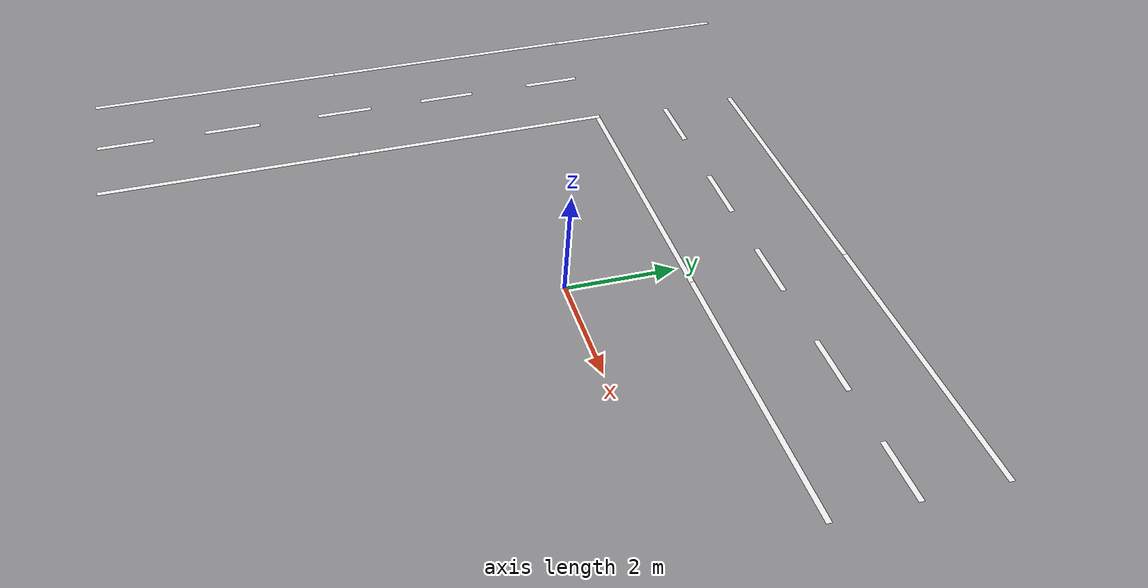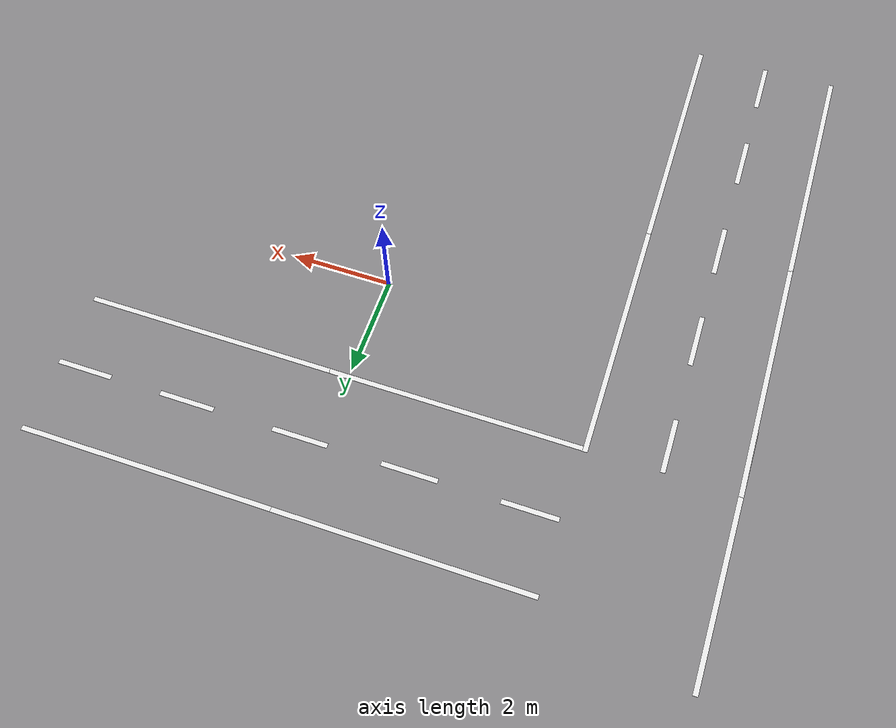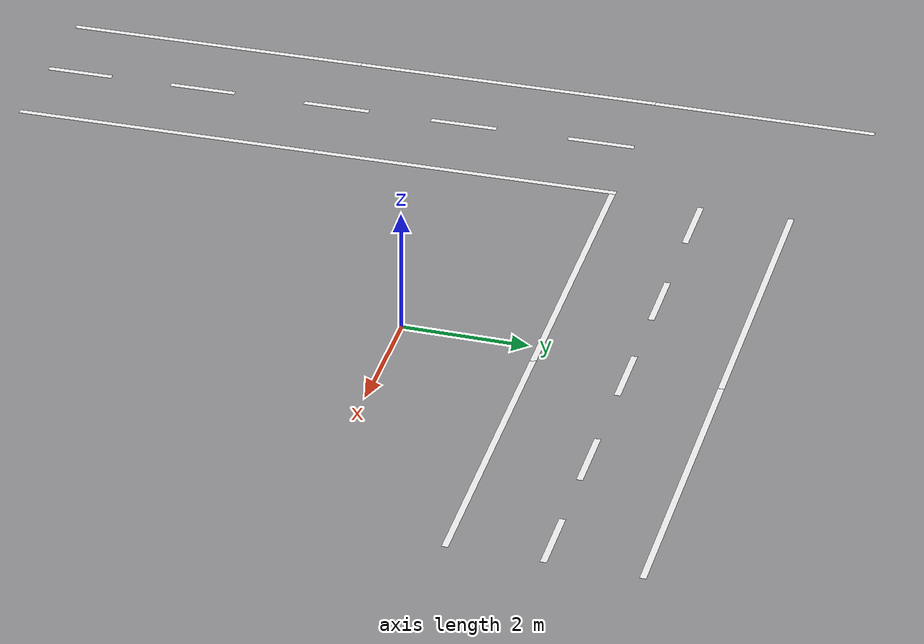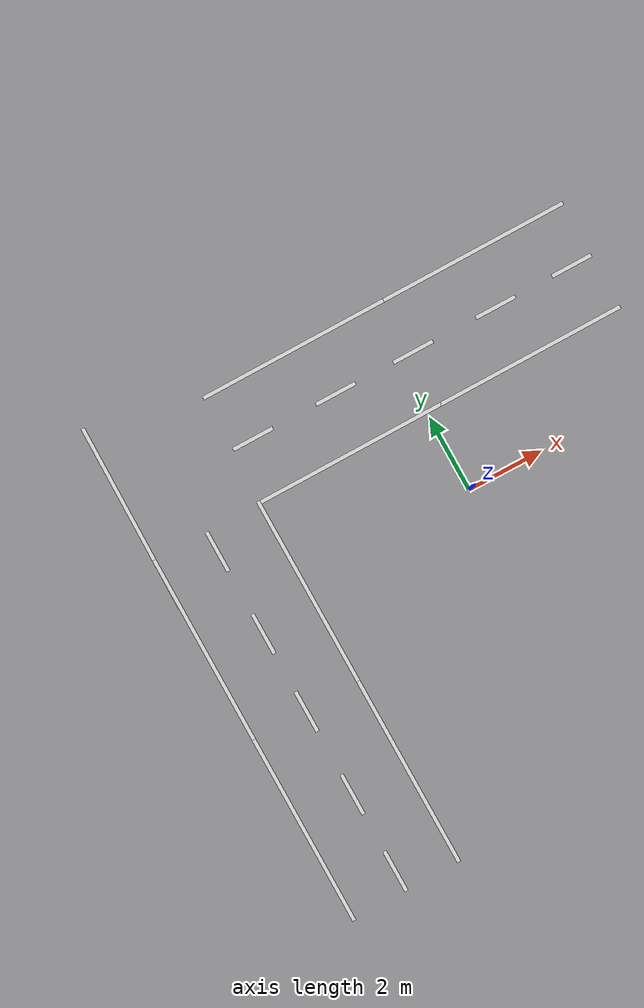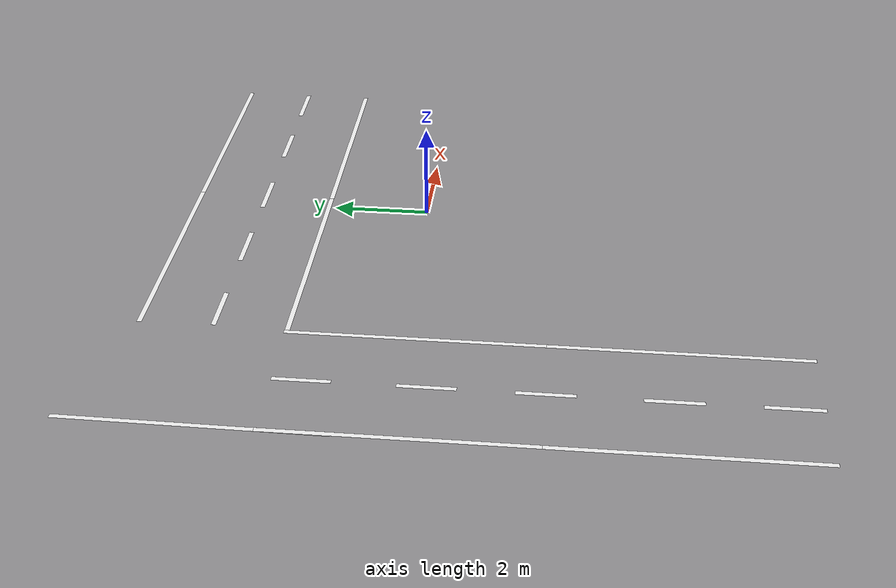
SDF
<sdf version="1.6">
 <model name="roadSystem">
  <model name="road">
   <model name="road">
    <link name="link">
     <pose>-0.42356 2.05106 0 0 -0 0</pose>
     <inertial>
      <mass>0.362604</mass>
      <inertia>
       <ixx>0.00016034</ixx>
       <ixy>0</ixy>
       <ixz>0</ixz>
       <iyy>0.757889</iyy>
       <iyz>0</iyz>
       <izz>0.758045</izz>
      </inertia>
     </inertial>
     <visual name="visual">
      <geometry><box><size>5 0.1 1e-06</size></box></geometry>
      <material>
       <script><name>Gazebo/White</name><uri>file://media/materials/scripts/gazebo.material</uri></script>
       <shader type="pixel"><normal_map>__default__</normal_map></shader>
       <ambient>1 1 1 1</ambient>
       <diffuse>0.7 0.7 0.7 0</diffuse>
       <specular>0.01 0.01 0.01 0</specular>
       <emissive>0 0 0 1</emissive>
       <lighting>0</lighting>
      </material>
     </visual>
     <collision name="collision">
      <geometry><box><size>5.00814 0.072377 0.008224</size></box></geometry>
      <surface>
       <friction>
        <ode><mu>1</mu><mu2>1</mu2><fdir1>0 0 0</fdir1><slip1>0</slip1><slip2>0</slip2></ode>
        <torsional>
         <coefficient>1</coefficient>
         <patch_radius>0</patch_radius>
         <surface_radius>0</surface_radius>
         <use_patch_radius>1</use_patch_radius>
         <ode><slip>0</slip></ode>
        </torsional>
       </friction>
       <bounce><restitution_coefficient>0</restitution_coefficient><threshold>1e+06</threshold></bounce>
       <contact>
        <collide_without_contact>0</collide_without_contact>
        <collide_without_contact_bitmask>1</collide_without_contact_bitmask>
        <collide_bitmask>1</collide_bitmask>
        <ode>
         <soft_cfm>0</soft_cfm>
         <soft_erp>0.2</soft_erp>
         <kp>1e+13</kp>
         <kd>1</kd>
         <max_vel>0.01</max_vel>
         <min_depth>0</min_depth>
        </ode>
        <bullet>
         <split_impulse>1</split_impulse>
         <split_impulse_penetration_threshold>-0.01</split_impulse_penetration_threshold>
         <soft_cfm>0</soft_cfm>
         <soft_erp>0.2</soft_erp>
         <kp>1e+13</kp>
         <kd>1</kd>
        </bullet>
       </contact>
      </surface>
     </collision>
    </link>
    <static>0</static>
    <pose>4.98271 0.008236 0 0 -0 0</pose>
   </model>
   <model name="road_clone">
    <link name="link">
     <pose>-0.42356 2.05106 0 0 -0 0</pose>
     <inertial>
      <mass>0.362604</mass>
      <inertia>
       <ixx>0.00016034</ixx>
       <ixy>0</ixy>
       <ixz>0</ixz>
       <iyy>0.757889</iyy>
       <iyz>0</iyz>
       <izz>0.758045</izz>
      </inertia>
     </inertial>
     <visual name="visual">
      <geometry><box><size>5 0.1 1e-06</size></box></geometry>
      <material>
       <script><name>Gazebo/White</name><uri>file://media/materials/scripts/gazebo.material</uri></script>
       <shader type="pixel"><normal_map>__default__</normal_map></shader>
       <ambient>1 1 1 1</ambient>
       <diffuse>0.7 0.7 0.7 0</diffuse>
       <specular>0.01 0.01 0.01 0</specular>
       <emissive>0 0 0 1</emissive>
       <lighting>0</lighting>
      </material>
     </visual>
     <collision name="collision">
      <geometry><box><size>5.00814 0.072377 0.008224</size></box></geometry>
      <surface>
       <friction>
        <ode><mu>1</mu><mu2>1</mu2><fdir1>0 0 0</fdir1><slip1>0</slip1><slip2>0</slip2></ode>
        <torsional>
         <coefficient>1</coefficient>
         <patch_radius>0</patch_radius>
         <surface_radius>0</surface_radius>
         <use_patch_radius>1</use_patch_radius>
         <ode><slip>0</slip></ode>
        </torsional>
       </friction>
       <bounce><restitution_coefficient>0</restitution_coefficient><threshold>1e+06</threshold></bounce>
       <contact>
        <collide_without_contact>0</collide_without_contact>
        <collide_without_contact_bitmask>1</collide_without_contact_bitmask>
        <collide_bitmask>1</collide_bitmask>
        <ode>
         <soft_cfm>0</soft_cfm>
         <soft_erp>0.2</soft_erp>
         <kp>1e+13</kp>
         <kd>1</kd>
         <max_vel>0.01</max_vel>
         <min_depth>0</min_depth>
        </ode>
        <bullet>
         <split_impulse>1</split_impulse>
         <split_impulse_penetration_threshold>-0.01</split_impulse_penetration_threshold>
         <soft_cfm>0</soft_cfm>
         <soft_erp>0.2</soft_erp>
         <kp>1e+13</kp>
         <kd>1</kd>
        </bullet>
       </contact>
      </surface>
     </collision>
    </link>
    <static>0</static>
    <pose>-0.01634 0.008315 0 0 -0 0</pose>
   </model>
   <model name="roadmark">
    <link name="link">
     <pose>-0.38042 1.1429 0 0 -0 0</pose>
     <inertial>
      <mass>0.362604</mass>
      <inertia>
       <ixx>0.00016034</ixx>
       <ixy>0</ixy>
       <ixz>0</ixz>
       <iyy>0.757889</iyy>
       <iyz>0</iyz>
       <izz>0.758045</izz>
      </inertia>
     </inertial>
     <visual name="visual">
      <geometry><box><size>5 0.1 1e-06</size></box></geometry>
      <material>
       <script><name>Gazebo/White</name><uri>file://media/materials/scripts/gazebo.material</uri></script>
       <shader type="pixel"><normal_map>__default__</normal_map></shader>
       <ambient>1 1 1 1</ambient>
       <diffuse>0.7 0.7 0.7 0</diffuse>
       <specular>0.01 0.01 0.01 0</specular>
       <emissive>0 0 0 1</emissive>
       <lighting>0</lighting>
      </material>
     </visual>
     <collision name="collision">
      <geometry><box><size>5.00814 0.072377 0.008224</size></box></geometry>
      <surface>
       <friction>
        <ode><mu>1</mu><mu2>1</mu2><fdir1>0 0 0</fdir1><slip1>0</slip1><slip2>0</slip2></ode>
        <torsional>
         <coefficient>1</coefficient>
         <patch_radius>0</patch_radius>
         <surface_radius>0</surface_radius>
         <use_patch_radius>1</use_patch_radius>
         <ode><slip>0</slip></ode>
        </torsional>
       </friction>
       <bounce><restitution_coefficient>0</restitution_coefficient><threshold>1e+06</threshold></bounce>
       <contact>
        <collide_without_contact>0</collide_without_contact>
        <collide_without_contact_bitmask>1</collide_without_contact_bitmask>
        <collide_bitmask>1</collide_bitmask>
        <ode>
         <soft_cfm>0</soft_cfm>
         <soft_erp>0.2</soft_erp>
         <kp>1e+13</kp>
         <kd>1</kd>
         <max_vel>0.01</max_vel>
         <min_depth>0</min_depth>
        </ode>
        <bullet>
         <split_impulse>1</split_impulse>
         <split_impulse_penetration_threshold>-0.01</split_impulse_penetration_threshold>
         <soft_cfm>0</soft_cfm>
         <soft_erp>0.2</soft_erp>
         <kp>1e+13</kp>
         <kd>1</kd>
        </bullet>
       </contact>
      </surface>
     </collision>
    </link>
    <static>0</static>
    <pose>-0.037207 -1.98082 0 0 -0 0</pose>
   </model>
   <model name="roadmark_clone_0">
    <link name="link">
     <pose>-0.38042 1.1429 0 0 -0 0</pose>
     <inertial>
      <mass>0.362604</mass>
      <inertia>
       <ixx>0.00016034</ixx>
       <ixy>0</ixy>
       <ixz>0</ixz>
       <iyy>0.757889</iyy>
       <iyz>0</iyz>
       <izz>0.758045</izz>
      </inertia>
     </inertial>
     <visual name="visual">
      <geometry><box><size>5 0.1 1e-06</size></box></geometry>
      <material>
       <script><name>Gazebo/White</name><uri>file://media/materials/scripts/gazebo.material</uri></script>
       <shader type="pixel"><normal_map>__default__</normal_map></shader>
       <ambient>1 1 1 1</ambient>
       <diffuse>0.7 0.7 0.7 0</diffuse>
       <specular>0.01 0.01 0.01 0</specular>
       <emissive>0 0 0 1</emissive>
       <lighting>0</lighting>
      </material>
     </visual>
     <collision name="collision">
      <geometry><box><size>5.00814 0.072377 0.008224</size></box></geometry>
      <surface>
       <friction>
        <ode><mu>1</mu><mu2>1</mu2><fdir1>0 0 0</fdir1><slip1>0</slip1><slip2>0</slip2></ode>
        <torsional>
         <coefficient>1</coefficient>
         <patch_radius>0</patch_radius>
         <surface_radius>0</surface_radius>
         <use_patch_radius>1</use_patch_radius>
         <ode><slip>0</slip></ode>
        </torsional>
       </friction>
       <bounce><restitution_coefficient>0</restitution_coefficient><threshold>1e+06</threshold></bounce>
       <contact>
        <collide_without_contact>0</collide_without_contact>
        <collide_without_contact_bitmask>1</collide_without_contact_bitmask>
        <collide_bitmask>1</collide_bitmask>
        <ode>
         <soft_cfm>0</soft_cfm>
         <soft_erp>0.2</soft_erp>
         <kp>1e+13</kp>
         <kd>1</kd>
         <max_vel>0.01</max_vel>
         <min_depth>0</min_depth>
        </ode>
        <bullet>
         <split_impulse>1</split_impulse>
         <split_impulse_penetration_threshold>-0.01</split_impulse_penetration_threshold>
         <soft_cfm>0</soft_cfm>
         <soft_erp>0.2</soft_erp>
         <kp>1e+13</kp>
         <kd>1</kd>
        </bullet>
       </contact>
      </surface>
     </collision>
    </link>
    <static>0</static>
    <pose>4.94295 -1.98208 0 0 -0 0</pose>
   </model>
   <model name="roadmark_mid">
    <link name="link">
     <pose>-2.29682 2.593 0.0001 0 -0 0</pose>
     <inertial>
      <mass>0.0807885</mass>
      <inertia>
       <ixx>3.572e-05</ixx>
       <ixy>0</ixy>
       <ixz>0</ixz>
       <iyy>0.00838261</iyy>
       <iyz>0</iyz>
       <izz>0.00841742</izz>
      </inertia>
     </inertial>
     <visual name="visual">
      <geometry><box><size>1.1 0.1 1e-06</size></box></geometry>
      <material>
       <script><name>Gazebo/White</name><uri>file://media/materials/scripts/gazebo.material</uri></script>
       <shader type="pixel"><normal_map>__default__</normal_map></shader>
       <ambient>1 1 1 1</ambient>
       <diffuse>0.7 0.7 0.7 0</diffuse>
       <specular>0.01 0.01 0.01 0</specular>
       <emissive>0 0 0 1</emissive>
       <lighting>0</lighting>
      </material>
     </visual>
     <collision name="collision">
      <geometry><box><size>1.11582 0.072377 0.008224</size></box></geometry>
      <surface>
       <friction>
        <ode><mu>1</mu><mu2>1</mu2><fdir1>0 0 0</fdir1><slip1>0</slip1><slip2>0</slip2></ode>
        <torsional>
         <coefficient>1</coefficient>
         <patch_radius>0</patch_radius>
         <surface_radius>0</surface_radius>
         <use_patch_radius>1</use_patch_radius>
         <ode><slip>0</slip></ode>
        </torsional>
       </friction>
       <bounce><restitution_coefficient>0</restitution_coefficient><threshold>1e+06</threshold></bounce>
       <contact>
        <collide_without_contact>0</collide_without_contact>
        <collide_without_contact_bitmask>1</collide_without_contact_bitmask>
        <collide_bitmask>1</collide_bitmask>
        <ode>
         <soft_cfm>0</soft_cfm>
         <soft_erp>0.2</soft_erp>
         <kp>1e+13</kp>
         <kd>1</kd>
         <max_vel>0.01</max_vel>
         <min_depth>0</min_depth>
        </ode>
        <bullet>
         <split_impulse>1</split_impulse>
         <split_impulse_penetration_threshold>-0.01</split_impulse_penetration_threshold>
         <soft_cfm>0</soft_cfm>
         <soft_erp>0.2</soft_erp>
         <kp>1e+13</kp>
         <kd>1</kd>
        </bullet>
       </contact>
      </surface>
     </collision>
    </link>
    <static>0</static>
    <pose>8.80135 -1.98422 0 0 -0 0</pose>
   </model>
   <model name="roadmark_mid_clone">
    <link name="link">
     <pose>-2.29682 2.593 0.0001 0 -0 0</pose>
     <inertial>
      <mass>0.0807885</mass>
      <inertia>
       <ixx>3.572e-05</ixx>
       <ixy>0</ixy>
       <ixz>0</ixz>
       <iyy>0.00838261</iyy>
       <iyz>0</iyz>
       <izz>0.00841742</izz>
      </inertia>
     </inertial>
     <visual name="visual">
      <geometry><box><size>1.1 0.1 1e-06</size></box></geometry>
      <material>
       <script><name>Gazebo/White</name><uri>file://media/materials/scripts/gazebo.material</uri></script>
       <shader type="pixel"><normal_map>__default__</normal_map></shader>
       <ambient>1 1 1 1</ambient>
       <diffuse>0.7 0.7 0.7 0</diffuse>
       <specular>0.01 0.01 0.01 0</specular>
       <emissive>0 0 0 1</emissive>
       <lighting>0</lighting>
      </material>
     </visual>
     <collision name="collision">
      <geometry><box><size>1.11582 0.072377 0.008224</size></box></geometry>
      <surface>
       <friction>
        <ode><mu>1</mu><mu2>1</mu2><fdir1>0 0 0</fdir1><slip1>0</slip1><slip2>0</slip2></ode>
        <torsional>
         <coefficient>1</coefficient>
         <patch_radius>0</patch_radius>
         <surface_radius>0</surface_radius>
         <use_patch_radius>1</use_patch_radius>
         <ode><slip>0</slip></ode>
        </torsional>
       </friction>
       <bounce><restitution_coefficient>0</restitution_coefficient><threshold>1e+06</threshold></bounce>
       <contact>
        <collide_without_contact>0</collide_without_contact>
        <collide_without_contact_bitmask>1</collide_without_contact_bitmask>
        <collide_bitmask>1</collide_bitmask>
        <ode>
         <soft_cfm>0</soft_cfm>
         <soft_erp>0.2</soft_erp>
         <kp>1e+13</kp>
         <kd>1</kd>
         <max_vel>0.01</max_vel>
         <min_depth>0</min_depth>
        </ode>
        <bullet>
         <split_impulse>1</split_impulse>
         <split_impulse_penetration_threshold>-0.01</split_impulse_penetration_threshold>
         <soft_cfm>0</soft_cfm>
         <soft_erp>0.2</soft_erp>
         <kp>1e+13</kp>
         <kd>1</kd>
        </bullet>
       </contact>
      </surface>
     </collision>
    </link>
    <static>0</static>
    <pose>-0.048046 -1.98463 0 0 -0 0</pose>
   </model>
   <model name="roadmark_mid_clone_0">
    <link name="link">
     <pose>-2.29682 2.593 0.0001 0 -0 0</pose>
     <inertial>
      <mass>0.0807885</mass>
      <inertia>
       <ixx>3.572e-05</ixx>
       <ixy>0</ixy>
       <ixz>0</ixz>
       <iyy>0.00838261</iyy>
       <iyz>0</iyz>
       <izz>0.00841742</izz>
      </inertia>
     </inertial>
     <visual name="visual">
      <geometry><box><size>1.1 0.1 1e-06</size></box></geometry>
      <material>
       <script><name>Gazebo/White</name><uri>file://media/materials/scripts/gazebo.material</uri></script>
       <shader type="pixel"><normal_map>__default__</normal_map></shader>
       <ambient>1 1 1 1</ambient>
       <diffuse>0.7 0.7 0.7 0</diffuse>
       <specular>0.01 0.01 0.01 0</specular>
       <emissive>0 0 0 1</emissive>
       <lighting>0</lighting>
      </material>
     </visual>
     <collision name="collision">
      <geometry><box><size>1.11582 0.072377 0.008224</size></box></geometry>
      <surface>
       <friction>
        <ode><mu>1</mu><mu2>1</mu2><fdir1>0 0 0</fdir1><slip1>0</slip1><slip2>0</slip2></ode>
        <torsional>
         <coefficient>1</coefficient>
         <patch_radius>0</patch_radius>
         <surface_radius>0</surface_radius>
         <use_patch_radius>1</use_patch_radius>
         <ode><slip>0</slip></ode>
        </torsional>
       </friction>
       <bounce><restitution_coefficient>0</restitution_coefficient><threshold>1e+06</threshold></bounce>
       <contact>
        <collide_without_contact>0</collide_without_contact>
        <collide_without_contact_bitmask>1</collide_without_contact_bitmask>
        <collide_bitmask>1</collide_bitmask>
        <ode>
         <soft_cfm>0</soft_cfm>
         <soft_erp>0.2</soft_erp>
         <kp>1e+13</kp>
         <kd>1</kd>
         <max_vel>0.01</max_vel>
         <min_depth>0</min_depth>
        </ode>
        <bullet>
         <split_impulse>1</split_impulse>
         <split_impulse_penetration_threshold>-0.01</split_impulse_penetration_threshold>
         <soft_cfm>0</soft_cfm>
         <soft_erp>0.2</soft_erp>
         <kp>1e+13</kp>
         <kd>1</kd>
        </bullet>
       </contact>
      </surface>
     </collision>
    </link>
    <static>0</static>
    <pose>4.39245 -1.98631 0 0 -0 0</pose>
   </model>
   <model name="roadmark_mid_clone_1">
    <link name="link">
     <pose>-2.29682 2.593 0.0001 0 -0 0</pose>
     <inertial>
      <mass>0.0807885</mass>
      <inertia>
       <ixx>3.572e-05</ixx>
       <ixy>0</ixy>
       <ixz>0</ixz>
       <iyy>0.00838261</iyy>
       <iyz>0</iyz>
       <izz>0.00841742</izz>
      </inertia>
     </inertial>
     <visual name="visual">
      <geometry><box><size>1.1 0.1 1e-06</size></box></geometry>
      <material>
       <script><name>Gazebo/White</name><uri>file://media/materials/scripts/gazebo.material</uri></script>
       <shader type="pixel"><normal_map>__default__</normal_map></shader>
       <ambient>1 1 1 1</ambient>
       <diffuse>0.7 0.7 0.7 0</diffuse>
       <specular>0.01 0.01 0.01 0</specular>
       <emissive>0 0 0 1</emissive>
       <lighting>0</lighting>
      </material>
     </visual>
     <collision name="collision">
      <geometry><box><size>1.11582 0.072377 0.008224</size></box></geometry>
      <surface>
       <friction>
        <ode><mu>1</mu><mu2>1</mu2><fdir1>0 0 0</fdir1><slip1>0</slip1><slip2>0</slip2></ode>
        <torsional>
         <coefficient>1</coefficient>
         <patch_radius>0</patch_radius>
         <surface_radius>0</surface_radius>
         <use_patch_radius>1</use_patch_radius>
         <ode><slip>0</slip></ode>
        </torsional>
       </friction>
       <bounce><restitution_coefficient>0</restitution_coefficient><threshold>1e+06</threshold></bounce>
       <contact>
        <collide_without_contact>0</collide_without_contact>
        <collide_without_contact_bitmask>1</collide_without_contact_bitmask>
        <collide_bitmask>1</collide_bitmask>
        <ode>
         <soft_cfm>0</soft_cfm>
         <soft_erp>0.2</soft_erp>
         <kp>1e+13</kp>
         <kd>1</kd>
         <max_vel>0.01</max_vel>
         <min_depth>0</min_depth>
        </ode>
        <bullet>
         <split_impulse>1</split_impulse>
         <split_impulse_penetration_threshold>-0.01</split_impulse_penetration_threshold>
         <soft_cfm>0</soft_cfm>
         <soft_erp>0.2</soft_erp>
         <kp>1e+13</kp>
         <kd>1</kd>
        </bullet>
       </contact>
      </surface>
     </collision>
    </link>
    <static>0</static>
    <pose>6.68356 -1.98916 0 0 -0 0</pose>
   </model>
   <model name="roadmark_mid_clone_2">
    <link name="link">
     <pose>-2.29682 2.593 0.0001 0 -0 0</pose>
     <inertial>
      <mass>0.0807885</mass>
      <inertia>
       <ixx>3.572e-05</ixx>
       <ixy>0</ixy>
       <ixz>0</ixz>
       <iyy>0.00838261</iyy>
       <iyz>0</iyz>
       <izz>0.00841742</izz>
      </inertia>
     </inertial>
     <visual name="visual">
      <geometry><box><size>1.1 0.1 1e-06</size></box></geometry>
      <material>
       <script><name>Gazebo/White</name><uri>file://media/materials/scripts/gazebo.material</uri></script>
       <shader type="pixel"><normal_map>__default__</normal_map></shader>
       <ambient>1 1 1 1</ambient>
       <diffuse>0.7 0.7 0.7 0</diffuse>
       <specular>0.01 0.01 0.01 0</specular>
       <emissive>0 0 0 1</emissive>
       <lighting>0</lighting>
      </material>
     </visual>
     <collision name="collision">
      <geometry><box><size>1.11582 0.072377 0.008224</size></box></geometry>
      <surface>
       <friction>
        <ode><mu>1</mu><mu2>1</mu2><fdir1>0 0 0</fdir1><slip1>0</slip1><slip2>0</slip2></ode>
        <torsional>
         <coefficient>1</coefficient>
         <patch_radius>0</patch_radius>
         <surface_radius>0</surface_radius>
         <use_patch_radius>1</use_patch_radius>
         <ode><slip>0</slip></ode>
        </torsional>
       </friction>
       <bounce><restitution_coefficient>0</restitution_coefficient><threshold>1e+06</threshold></bounce>
       <contact>
        <collide_without_contact>0</collide_without_contact>
        <collide_without_contact_bitmask>1</collide_without_contact_bitmask>
        <collide_bitmask>1</collide_bitmask>
        <ode>
         <soft_cfm>0</soft_cfm>
         <soft_erp>0.2</soft_erp>
         <kp>1e+13</kp>
         <kd>1</kd>
         <max_vel>0.01</max_vel>
         <min_depth>0</min_depth>
        </ode>
        <bullet>
         <split_impulse>1</split_impulse>
         <split_impulse_penetration_threshold>-0.01</split_impulse_penetration_threshold>
         <soft_cfm>0</soft_cfm>
         <soft_erp>0.2</soft_erp>
         <kp>1e+13</kp>
         <kd>1</kd>
        </bullet>
       </contact>
      </surface>
     </collision>
    </link>
    <static>0</static>
    <pose>2.24236 -1.98333 0 0 -0 0</pose>
   </model>
   <static>0</static>
   <pose>-1.68364 3.00119 0.008097 -0 -0 -0</pose>
  </model>
  <model name="road_clone">
   <model name="road">
    <link name="link">
     <pose>-0.42356 2.05106 0 0 -0 0</pose>
     <inertial>
      <mass>0.362604</mass>
      <inertia>
       <ixx>0.00016034</ixx>
       <ixy>0</ixy>
       <ixz>0</ixz>
       <iyy>0.757889</iyy>
       <iyz>0</iyz>
       <izz>0.758045</izz>
      </inertia>
     </inertial>
     <visual name="visual">
      <geometry><box><size>5 0.1 1e-06</size></box></geometry>
      <material>
       <script><name>Gazebo/White</name><uri>file://media/materials/scripts/gazebo.material</uri></script>
       <shader type="pixel"><normal_map>__default__</normal_map></shader>
       <ambient>1 1 1 1</ambient>
       <diffuse>0.7 0.7 0.7 0</diffuse>
       <specular>0.01 0.01 0.01 0</specular>
       <emissive>0 0 0 1</emissive>
       <lighting>0</lighting>
      </material>
     </visual>
     <collision name="collision">
      <geometry><box><size>5.00814 0.072377 0.008224</size></box></geometry>
      <surface>
       <friction>
        <ode><mu>1</mu><mu2>1</mu2><fdir1>0 0 0</fdir1><slip1>0</slip1><slip2>0</slip2></ode>
        <torsional>
         <coefficient>1</coefficient>
         <patch_radius>0</patch_radius>
         <surface_radius>0</surface_radius>
         <use_patch_radius>1</use_patch_radius>
         <ode><slip>0</slip></ode>
        </torsional>
       </friction>
       <bounce><restitution_coefficient>0</restitution_coefficient><threshold>1e+06</threshold></bounce>
       <contact>
        <collide_without_contact>0</collide_without_contact>
        <collide_without_contact_bitmask>1</collide_without_contact_bitmask>
        <collide_bitmask>1</collide_bitmask>
        <ode>
         <soft_cfm>0</soft_cfm>
         <soft_erp>0.2</soft_erp>
         <kp>1e+13</kp>
         <kd>1</kd>
         <max_vel>0.01</max_vel>
         <min_depth>0</min_depth>
        </ode>
        <bullet>
         <split_impulse>1</split_impulse>
         <split_impulse_penetration_threshold>-0.01</split_impulse_penetration_threshold>
         <soft_cfm>0</soft_cfm>
         <soft_erp>0.2</soft_erp>
         <kp>1e+13</kp>
         <kd>1</kd>
        </bullet>
       </contact>
      </surface>
     </collision>
    </link>
    <static>0</static>
    <pose>4.98271 0.008236 0 0 -0 0</pose>
   </model>
   <model name="road_clone">
    <link name="link">
     <pose>-0.42356 2.05106 0 0 -0 0</pose>
     <inertial>
      <mass>0.362604</mass>
      <inertia>
       <ixx>0.00016034</ixx>
       <ixy>0</ixy>
       <ixz>0</ixz>
       <iyy>0.757889</iyy>
       <iyz>0</iyz>
       <izz>0.758045</izz>
      </inertia>
     </inertial>
     <visual name="visual">
      <geometry><box><size>5 0.1 1e-06</size></box></geometry>
      <material>
       <script><name>Gazebo/White</name><uri>file://media/materials/scripts/gazebo.material</uri></script>
       <shader type="pixel"><normal_map>__default__</normal_map></shader>
       <ambient>1 1 1 1</ambient>
       <diffuse>0.7 0.7 0.7 0</diffuse>
       <specular>0.01 0.01 0.01 0</specular>
       <emissive>0 0 0 1</emissive>
       <lighting>0</lighting>
      </material>
     </visual>
     <collision name="collision">
      <geometry><box><size>5.00814 0.072377 0.008224</size></box></geometry>
      <surface>
       <friction>
        <ode><mu>1</mu><mu2>1</mu2><fdir1>0 0 0</fdir1><slip1>0</slip1><slip2>0</slip2></ode>
        <torsional>
         <coefficient>1</coefficient>
         <patch_radius>0</patch_radius>
         <surface_radius>0</surface_radius>
         <use_patch_radius>1</use_patch_radius>
         <ode><slip>0</slip></ode>
        </torsional>
       </friction>
       <bounce><restitution_coefficient>0</restitution_coefficient><threshold>1e+06</threshold></bounce>
       <contact>
        <collide_without_contact>0</collide_without_contact>
        <collide_without_contact_bitmask>1</collide_without_contact_bitmask>
        <collide_bitmask>1</collide_bitmask>
        <ode>
         <soft_cfm>0</soft_cfm>
         <soft_erp>0.2</soft_erp>
         <kp>1e+13</kp>
         <kd>1</kd>
         <max_vel>0.01</max_vel>
         <min_depth>0</min_depth>
        </ode>
        <bullet>
         <split_impulse>1</split_impulse>
         <split_impulse_penetration_threshold>-0.01</split_impulse_penetration_threshold>
         <soft_cfm>0</soft_cfm>
         <soft_erp>0.2</soft_erp>
         <kp>1e+13</kp>
         <kd>1</kd>
        </bullet>
       </contact>
      </surface>
     </collision>
    </link>
    <static>0</static>
    <pose>-0.01634 0.008315 0 0 -0 0</pose>
   </model>
   <model name="roadmark">
    <link name="link">
     <pose>-0.38042 1.1429 0 0 -0 0</pose>
     <inertial>
      <mass>0.362604</mass>
      <inertia>
       <ixx>0.00016034</ixx>
       <ixy>0</ixy>
       <ixz>0</ixz>
       <iyy>0.757889</iyy>
       <iyz>0</iyz>
       <izz>0.758045</izz>
      </inertia>
     </inertial>
     <visual name="visual">
      <geometry><box><size>5 0.1 1e-06</size></box></geometry>
      <material>
       <script><name>Gazebo/White</name><uri>file://media/materials/scripts/gazebo.material</uri></script>
       <shader type="pixel"><normal_map>__default__</normal_map></shader>
       <ambient>1 1 1 1</ambient>
       <diffuse>0.7 0.7 0.7 0</diffuse>
       <specular>0.01 0.01 0.01 0</specular>
       <emissive>0 0 0 1</emissive>
       <lighting>0</lighting>
      </material>
     </visual>
     <collision name="collision">
      <geometry><box><size>5.00814 0.072377 0.008224</size></box></geometry>
      <surface>
       <friction>
        <ode><mu>1</mu><mu2>1</mu2><fdir1>0 0 0</fdir1><slip1>0</slip1><slip2>0</slip2></ode>
        <torsional>
         <coefficient>1</coefficient>
         <patch_radius>0</patch_radius>
         <surface_radius>0</surface_radius>
         <use_patch_radius>1</use_patch_radius>
         <ode><slip>0</slip></ode>
        </torsional>
       </friction>
       <bounce><restitution_coefficient>0</restitution_coefficient><threshold>1e+06</threshold></bounce>
       <contact>
        <collide_without_contact>0</collide_without_contact>
        <collide_without_contact_bitmask>1</collide_without_contact_bitmask>
        <collide_bitmask>1</collide_bitmask>
        <ode>
         <soft_cfm>0</soft_cfm>
         <soft_erp>0.2</soft_erp>
         <kp>1e+13</kp>
         <kd>1</kd>
         <max_vel>0.01</max_vel>
         <min_depth>0</min_depth>
        </ode>
        <bullet>
         <split_impulse>1</split_impulse>
         <split_impulse_penetration_threshold>-0.01</split_impulse_penetration_threshold>
         <soft_cfm>0</soft_cfm>
         <soft_erp>0.2</soft_erp>
         <kp>1e+13</kp>
         <kd>1</kd>
        </bullet>
       </contact>
      </surface>
     </collision>
    </link>
    <static>0</static>
    <pose>-0.037207 -1.98082 0 0 -0 0</pose>
   </model>
   <model name="roadmark_clone_0">
    <link name="link">
     <pose>-0.38042 1.1429 0 0 -0 0</pose>
     <inertial>
      <mass>0.362604</mass>
      <inertia>
       <ixx>0.00016034</ixx>
       <ixy>0</ixy>
       <ixz>0</ixz>
       <iyy>0.757889</iyy>
       <iyz>0</iyz>
       <izz>0.758045</izz>
      </inertia>
     </inertial>
     <visual name="visual">
      <geometry><box><size>5 0.1 1e-06</size></box></geometry>
      <material>
       <script><name>Gazebo/White</name><uri>file://media/materials/scripts/gazebo.material</uri></script>
       <shader type="pixel"><normal_map>__default__</normal_map></shader>
       <ambient>1 1 1 1</ambient>
       <diffuse>0.7 0.7 0.7 0</diffuse>
       <specular>0.01 0.01 0.01 0</specular>
       <emissive>0 0 0 1</emissive>
       <lighting>0</lighting>
      </material>
     </visual>
     <collision name="collision">
      <geometry><box><size>5.00814 0.072377 0.008224</size></box></geometry>
      <surface>
       <friction>
        <ode><mu>1</mu><mu2>1</mu2><fdir1>0 0 0</fdir1><slip1>0</slip1><slip2>0</slip2></ode>
        <torsional>
         <coefficient>1</coefficient>
         <patch_radius>0</patch_radius>
         <surface_radius>0</surface_radius>
         <use_patch_radius>1</use_patch_radius>
         <ode><slip>0</slip></ode>
        </torsional>
       </friction>
       <bounce><restitution_coefficient>0</restitution_coefficient><threshold>1e+06</threshold></bounce>
       <contact>
        <collide_without_contact>0</collide_without_contact>
        <collide_without_contact_bitmask>1</collide_without_contact_bitmask>
        <collide_bitmask>1</collide_bitmask>
        <ode>
         <soft_cfm>0</soft_cfm>
         <soft_erp>0.2</soft_erp>
         <kp>1e+13</kp>
         <kd>1</kd>
         <max_vel>0.01</max_vel>
         <min_depth>0</min_depth>
        </ode>
        <bullet>
         <split_impulse>1</split_impulse>
         <split_impulse_penetration_threshold>-0.01</split_impulse_penetration_threshold>
         <soft_cfm>0</soft_cfm>
         <soft_erp>0.2</soft_erp>
         <kp>1e+13</kp>
         <kd>1</kd>
        </bullet>
       </contact>
      </surface>
     </collision>
    </link>
    <static>0</static>
    <pose>4.94295 -1.98208 0 0 -0 0</pose>
   </model>
   <model name="roadmark_mid">
    <link name="link">
     <pose>-2.29682 2.593 0.0001 0 -0 0</pose>
     <inertial>
      <mass>0.0807885</mass>
      <inertia>
       <ixx>3.572e-05</ixx>
       <ixy>0</ixy>
       <ixz>0</ixz>
       <iyy>0.00838261</iyy>
       <iyz>0</iyz>
       <izz>0.00841742</izz>
      </inertia>
     </inertial>
     <visual name="visual">
      <geometry><box><size>1.1 0.1 1e-06</size></box></geometry>
      <material>
       <script><name>Gazebo/White</name><uri>file://media/materials/scripts/gazebo.material</uri></script>
       <shader type="pixel"><normal_map>__default__</normal_map></shader>
       <ambient>1 1 1 1</ambient>
       <diffuse>0.7 0.7 0.7 0</diffuse>
       <specular>0.01 0.01 0.01 0</specular>
       <emissive>0 0 0 1</emissive>
       <lighting>0</lighting>
      </material>
     </visual>
     <collision name="collision">
      <geometry><box><size>1.11582 0.072377 0.008224</size></box></geometry>
      <surface>
       <friction>
        <ode><mu>1</mu><mu2>1</mu2><fdir1>0 0 0</fdir1><slip1>0</slip1><slip2>0</slip2></ode>
        <torsional>
         <coefficient>1</coefficient>
         <patch_radius>0</patch_radius>
         <surface_radius>0</surface_radius>
         <use_patch_radius>1</use_patch_radius>
         <ode><slip>0</slip></ode>
        </torsional>
       </friction>
       <bounce><restitution_coefficient>0</restitution_coefficient><threshold>1e+06</threshold></bounce>
       <contact>
        <collide_without_contact>0</collide_without_contact>
        <collide_without_contact_bitmask>1</collide_without_contact_bitmask>
        <collide_bitmask>1</collide_bitmask>
        <ode>
         <soft_cfm>0</soft_cfm>
         <soft_erp>0.2</soft_erp>
         <kp>1e+13</kp>
         <kd>1</kd>
         <max_vel>0.01</max_vel>
         <min_depth>0</min_depth>
        </ode>
        <bullet>
         <split_impulse>1</split_impulse>
         <split_impulse_penetration_threshold>-0.01</split_impulse_penetration_threshold>
         <soft_cfm>0</soft_cfm>
         <soft_erp>0.2</soft_erp>
         <kp>1e+13</kp>
         <kd>1</kd>
        </bullet>
       </contact>
      </surface>
     </collision>
    </link>
    <static>0</static>
    <pose>8.80135 -1.98422 0 0 -0 0</pose>
   </model>
   <model name="roadmark_mid_clone">
    <link name="link">
     <pose>-2.29682 2.593 0.0001 0 -0 0</pose>
     <inertial>
      <mass>0.0807885</mass>
      <inertia>
       <ixx>3.572e-05</ixx>
       <ixy>0</ixy>
       <ixz>0</ixz>
       <iyy>0.00838261</iyy>
       <iyz>0</iyz>
       <izz>0.00841742</izz>
      </inertia>
     </inertial>
     <visual name="visual">
      <geometry><box><size>1.1 0.1 1e-06</size></box></geometry>
      <material>
       <script><name>Gazebo/White</name><uri>file://media/materials/scripts/gazebo.material</uri></script>
       <shader type="pixel"><normal_map>__default__</normal_map></shader>
       <ambient>1 1 1 1</ambient>
       <diffuse>0.7 0.7 0.7 0</diffuse>
       <specular>0.01 0.01 0.01 0</specular>
       <emissive>0 0 0 1</emissive>
       <lighting>0</lighting>
      </material>
     </visual>
     <collision name="collision">
      <geometry><box><size>1.11582 0.072377 0.008224</size></box></geometry>
      <surface>
       <friction>
        <ode><mu>1</mu><mu2>1</mu2><fdir1>0 0 0</fdir1><slip1>0</slip1><slip2>0</slip2></ode>
        <torsional>
         <coefficient>1</coefficient>
         <patch_radius>0</patch_radius>
         <surface_radius>0</surface_radius>
         <use_patch_radius>1</use_patch_radius>
         <ode><slip>0</slip></ode>
        </torsional>
       </friction>
       <bounce><restitution_coefficient>0</restitution_coefficient><threshold>1e+06</threshold></bounce>
       <contact>
        <collide_without_contact>0</collide_without_contact>
        <collide_without_contact_bitmask>1</collide_without_contact_bitmask>
        <collide_bitmask>1</collide_bitmask>
        <ode>
         <soft_cfm>0</soft_cfm>
         <soft_erp>0.2</soft_erp>
         <kp>1e+13</kp>
         <kd>1</kd>
         <max_vel>0.01</max_vel>
         <min_depth>0</min_depth>
        </ode>
        <bullet>
         <split_impulse>1</split_impulse>
         <split_impulse_penetration_threshold>-0.01</split_impulse_penetration_threshold>
         <soft_cfm>0</soft_cfm>
         <soft_erp>0.2</soft_erp>
         <kp>1e+13</kp>
         <kd>1</kd>
        </bullet>
       </contact>
      </surface>
     </collision>
    </link>
    <static>0</static>
    <pose>-0.048046 -1.98463 0 0 -0 0</pose>
   </model>
   <model name="roadmark_mid_clone_0">
    <link name="link">
     <pose>-2.29682 2.593 0.0001 0 -0 0</pose>
     <inertial>
      <mass>0.0807885</mass>
      <inertia>
       <ixx>3.572e-05</ixx>
       <ixy>0</ixy>
       <ixz>0</ixz>
       <iyy>0.00838261</iyy>
       <iyz>0</iyz>
       <izz>0.00841742</izz>
      </inertia>
     </inertial>
     <visual name="visual">
      <geometry><box><size>1.1 0.1 1e-06</size></box></geometry>
      <material>
       <script><name>Gazebo/White</name><uri>file://media/materials/scripts/gazebo.material</uri></script>
       <shader type="pixel"><normal_map>__default__</normal_map></shader>
       <ambient>1 1 1 1</ambient>
       <diffuse>0.7 0.7 0.7 0</diffuse>
       <specular>0.01 0.01 0.01 0</specular>
       <emissive>0 0 0 1</emissive>
       <lighting>0</lighting>
      </material>
     </visual>
     <collision name="collision">
      <geometry><box><size>1.11582 0.072377 0.008224</size></box></geometry>
      <surface>
       <friction>
        <ode><mu>1</mu><mu2>1</mu2><fdir1>0 0 0</fdir1><slip1>0</slip1><slip2>0</slip2></ode>
        <torsional>
         <coefficient>1</coefficient>
         <patch_radius>0</patch_radius>
         <surface_radius>0</surface_radius>
         <use_patch_radius>1</use_patch_radius>
         <ode><slip>0</slip></ode>
        </torsional>
       </friction>
       <bounce><restitution_coefficient>0</restitution_coefficient><threshold>1e+06</threshold></bounce>
       <contact>
        <collide_without_contact>0</collide_without_contact>
        <collide_without_contact_bitmask>1</collide_without_contact_bitmask>
        <collide_bitmask>1</collide_bitmask>
        <ode>
         <soft_cfm>0</soft_cfm>
         <soft_erp>0.2</soft_erp>
         <kp>1e+13</kp>
         <kd>1</kd>
         <max_vel>0.01</max_vel>
         <min_depth>0</min_depth>
        </ode>
        <bullet>
         <split_impulse>1</split_impulse>
         <split_impulse_penetration_threshold>-0.01</split_impulse_penetration_threshold>
         <soft_cfm>0</soft_cfm>
         <soft_erp>0.2</soft_erp>
         <kp>1e+13</kp>
         <kd>1</kd>
        </bullet>
       </contact>
      </surface>
     </collision>
    </link>
    <static>0</static>
    <pose>4.39245 -1.98631 0 0 -0 0</pose>
   </model>
   <model name="roadmark_mid_clone_1">
    <link name="link">
     <pose>-2.29682 2.593 0.0001 0 -0 0</pose>
     <inertial>
      <mass>0.0807885</mass>
      <inertia>
       <ixx>3.572e-05</ixx>
       <ixy>0</ixy>
       <ixz>0</ixz>
       <iyy>0.00838261</iyy>
       <iyz>0</iyz>
       <izz>0.00841742</izz>
      </inertia>
     </inertial>
     <visual name="visual">
      <geometry><box><size>1.1 0.1 1e-06</size></box></geometry>
      <material>
       <script><name>Gazebo/White</name><uri>file://media/materials/scripts/gazebo.material</uri></script>
       <shader type="pixel"><normal_map>__default__</normal_map></shader>
       <ambient>1 1 1 1</ambient>
       <diffuse>0.7 0.7 0.7 0</diffuse>
       <specular>0.01 0.01 0.01 0</specular>
       <emissive>0 0 0 1</emissive>
       <lighting>0</lighting>
      </material>
     </visual>
     <collision name="collision">
      <geometry><box><size>1.11582 0.072377 0.008224</size></box></geometry>
      <surface>
       <friction>
        <ode><mu>1</mu><mu2>1</mu2><fdir1>0 0 0</fdir1><slip1>0</slip1><slip2>0</slip2></ode>
        <torsional>
         <coefficient>1</coefficient>
         <patch_radius>0</patch_radius>
         <surface_radius>0</surface_radius>
         <use_patch_radius>1</use_patch_radius>
         <ode><slip>0</slip></ode>
        </torsional>
       </friction>
       <bounce><restitution_coefficient>0</restitution_coefficient><threshold>1e+06</threshold></bounce>
       <contact>
        <collide_without_contact>0</collide_without_contact>
        <collide_without_contact_bitmask>1</collide_without_contact_bitmask>
        <collide_bitmask>1</collide_bitmask>
        <ode>
         <soft_cfm>0</soft_cfm>
         <soft_erp>0.2</soft_erp>
         <kp>1e+13</kp>
         <kd>1</kd>
         <max_vel>0.01</max_vel>
         <min_depth>0</min_depth>
        </ode>
        <bullet>
         <split_impulse>1</split_impulse>
         <split_impulse_penetration_threshold>-0.01</split_impulse_penetration_threshold>
         <soft_cfm>0</soft_cfm>
         <soft_erp>0.2</soft_erp>
         <kp>1e+13</kp>
         <kd>1</kd>
        </bullet>
       </contact>
      </surface>
     </collision>
    </link>
    <static>0</static>
    <pose>6.68356 -1.98916 0 0 -0 0</pose>
   </model>
   <model name="roadmark_mid_clone_2">
    <link name="link">
     <pose>-2.29682 2.593 0.0001 0 -0 0</pose>
     <inertial>
      <mass>0.0807885</mass>
      <inertia>
       <ixx>3.572e-05</ixx>
       <ixy>0</ixy>
       <ixz>0</ixz>
       <iyy>0.00838261</iyy>
       <iyz>0</iyz>
       <izz>0.00841742</izz>
      </inertia>
     </inertial>
     <visual name="visual">
      <geometry><box><size>1.1 0.1 1e-06</size></box></geometry>
      <material>
       <script><name>Gazebo/White</name><uri>file://media/materials/scripts/gazebo.material</uri></script>
       <shader type="pixel"><normal_map>__default__</normal_map></shader>
       <ambient>1 1 1 1</ambient>
       <diffuse>0.7 0.7 0.7 0</diffuse>
       <specular>0.01 0.01 0.01 0</specular>
       <emissive>0 0 0 1</emissive>
       <lighting>0</lighting>
      </material>
     </visual>
     <collision name="collision">
      <geometry><box><size>1.11582 0.072377 0.008224</size></box></geometry>
      <surface>
       <friction>
        <ode><mu>1</mu><mu2>1</mu2><fdir1>0 0 0</fdir1><slip1>0</slip1><slip2>0</slip2></ode>
        <torsional>
         <coefficient>1</coefficient>
         <patch_radius>0</patch_radius>
         <surface_radius>0</surface_radius>
         <use_patch_radius>1</use_patch_radius>
         <ode><slip>0</slip></ode>
        </torsional>
       </friction>
       <bounce><restitution_coefficient>0</restitution_coefficient><threshold>1e+06</threshold></bounce>
       <contact>
        <collide_without_contact>0</collide_without_contact>
        <collide_without_contact_bitmask>1</collide_without_contact_bitmask>
        <collide_bitmask>1</collide_bitmask>
        <ode>
         <soft_cfm>0</soft_cfm>
         <soft_erp>0.2</soft_erp>
         <kp>1e+13</kp>
         <kd>1</kd>
         <max_vel>0.01</max_vel>
         <min_depth>0</min_depth>
        </ode>
        <bullet>
         <split_impulse>1</split_impulse>
         <split_impulse_penetration_threshold>-0.01</split_impulse_penetration_threshold>
         <soft_cfm>0</soft_cfm>
         <soft_erp>0.2</soft_erp>
         <kp>1e+13</kp>
         <kd>1</kd>
        </bullet>
       </contact>
      </surface>
     </collision>
    </link>
    <static>0</static>
    <pose>2.24236 -1.98333 0 0 -0 0</pose>
   </model>
   <static>0</static>
   <pose>-6.68086 -0.742846 0.008097 0 0 -1.56054</pose>
  </model>
  <model name="roadmark_0">
   <link name="link">
    <pose>-0.38042 1.1429 0 0 -0 0</pose>
    <inertial>
     <mass>0.362604</mass>
     <inertia>
      <ixx>0.00016034</ixx>
      <ixy>0</ixy>
      <ixz>0</ixz>
      <iyy>0.757889</iyy>
      <iyz>0</iyz>
      <izz>0.758045</izz>
     </inertia>
    </inertial>
    <visual name="visual">
     <geometry><box><size>5 0.1 1e-06</size></box></geometry>
     <material>
      <script><name>Gazebo/White</name><uri>file://media/materials/scripts/gazebo.material</uri></script>
      <shader type="pixel"><normal_map>__default__</normal_map></shader>
      <ambient>1 1 1 1</ambient>
      <diffuse>0.7 0.7 0.7 0</diffuse>
      <specular>0.01 0.01 0.01 0</specular>
      <emissive>0 0 0 1</emissive>
      <lighting>0</lighting>
     </material>
    </visual>
    <collision name="collision">
     <geometry><box><size>5.00814 0.072377 0.008224</size></box></geometry>
     <surface>
      <friction>
       <ode><mu>1</mu><mu2>1</mu2><fdir1>0 0 0</fdir1><slip1>0</slip1><slip2>0</slip2></ode>
       <torsional>
        <coefficient>1</coefficient>
        <patch_radius>0</patch_radius>
        <surface_radius>0</surface_radius>
        <use_patch_radius>1</use_patch_radius>
        <ode><slip>0</slip></ode>
       </torsional>
      </friction>
      <bounce><restitution_coefficient>0</restitution_coefficient><threshold>1e+06</threshold></bounce>
      <contact>
       <collide_without_contact>0</collide_without_contact>
       <collide_without_contact_bitmask>1</collide_without_contact_bitmask>
       <collide_bitmask>1</collide_bitmask>
       <ode>
        <soft_cfm>0</soft_cfm>
        <soft_erp>0.2</soft_erp>
        <kp>1e+13</kp>
        <kd>1</kd>
        <max_vel>0.01</max_vel>
        <min_depth>0</min_depth>
       </ode>
       <bullet>
        <split_impulse>1</split_impulse>
        <split_impulse_penetration_threshold>-0.01</split_impulse_penetration_threshold>
        <soft_cfm>0</soft_cfm>
        <soft_erp>0.2</soft_erp>
        <kp>1e+13</kp>
        <kd>1</kd>
       </bullet>
      </contact>
     </surface>
    </collision>
   </link>
   <static>0</static>
   <pose>-8.69203 2.93715 0.004802 0 0 -1.57035</pose>
  </model>
  <static>0</static>
 </model>
</sdf>
